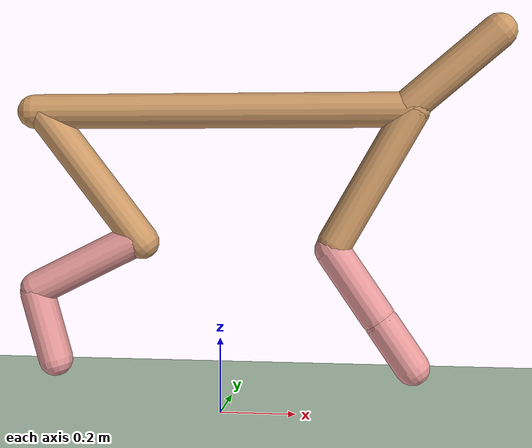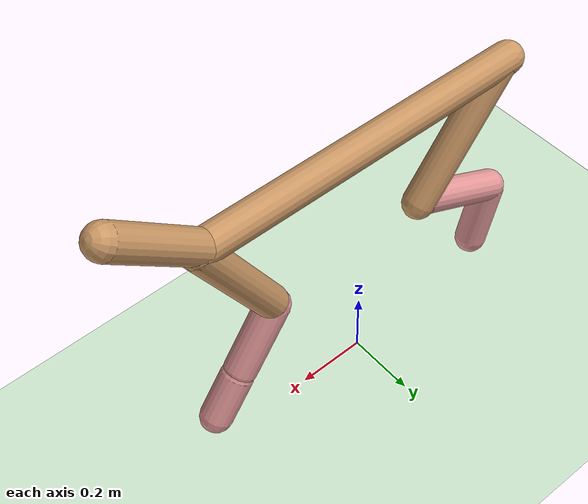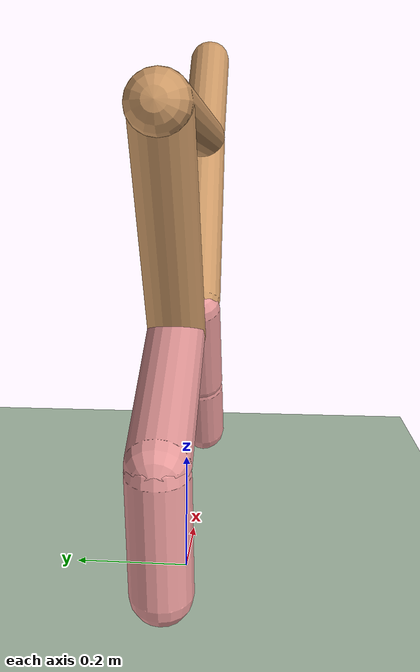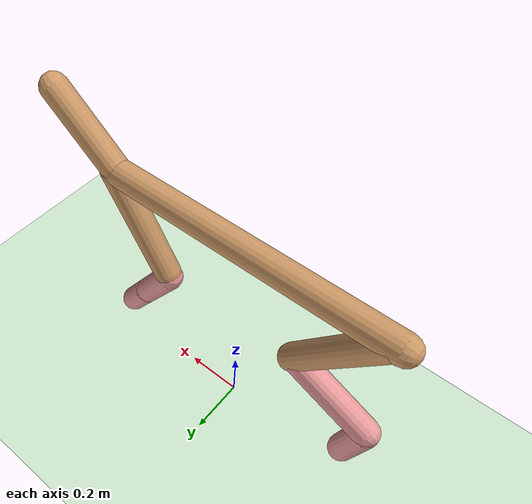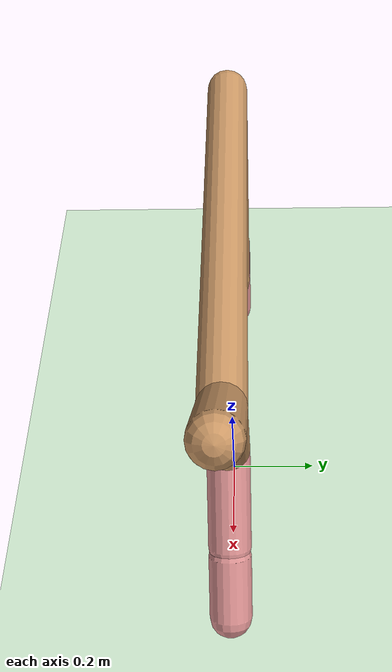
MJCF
<?xml version="1.0" ?>
<mujoco model="cheetah">

  <compiler angle="radian" coordinate="local" inertiafromgeom="true" settotalmass="14"/>

  <default>

    <joint armature=".1" damping=".01" limited="true" solimplimit="0 .8 .03" solreflimit=".02 1" stiffness="8"/>

    <geom conaffinity="0" condim="3" contype="1" friction=".4 .1 .1" rgba="0.8 0.6 .4 1" solimp="0.0 0.8 0.01" solref="0.02 1"/>

    <motor ctrllimited="true" ctrlrange="-1 1"/>

  </default>

  <size nstack="300000" nuser_geom="1"/>

  <option gravity="0 0 -9.81" timestep="0.01"/>

  <asset>

    <texture builtin="gradient" height="100" rgb1="1 1 1" rgb2="0 0 0" type="skybox" width="100"/>

    <texture builtin="flat" height="1278" mark="cross" markrgb="1 1 1" name="texgeom" random="0.01" rgb1="0.8 0.6 0.4" rgb2="0.8 0.6 0.4" type="cube" width="127"/>

    <texture builtin="checker" height="100" name="texplane" rgb1="0 0 0" rgb2="0.8 0.8 0.8" type="2d" width="100"/>

    <material name="MatPlane" reflectance="0.5" shininess="1" specular="1" texrepeat="60 60" texture="texplane"/>

    <material name="geom" texture="texgeom" texuniform="true"/>

  </asset>

  <worldbody>

    <light cutoff="100" diffuse="1 1 1" dir="-0 0 -1.3" directional="true" exponent="1" pos="0 0 1.3" specular=".1 .1 .1"/>

    <geom conaffinity="1" condim="3" material="MatPlane" name="floor" pos="0 0 0" rgba="0.8 0.9 0.8 1" size="40 40 40" type="plane"/>

    <body name="torso" pos="0 0 0.7991275874998255">

      <camera name="track" mode="trackcom" pos="0 -3 0.3" xyaxes="1 0 0 0 0 1"/>

      <joint armature="0" axis="1 0 0" damping="0" limited="false" name="rootx" pos="0 0 0" stiffness="0" type="slide"/>

      <joint armature="0" axis="0 0 1" damping="0" limited="false" name="rootz" pos="0 0 0" stiffness="0" type="slide"/>

      <joint armature="0" axis="0 1 0" damping="0" limited="false" name="rooty" pos="0 0 0" stiffness="0" type="hinge"/>

      <geom fromto="-.5 0 0 .5 0 0" name="torso" size="0.046" type="capsule"/>

      <geom axisangle="0 1 0 .87" name="head" pos=".6 0 .1" size="0.046 .15" type="capsule"/>

      <body name="bthigh" pos="-.5 0 0">

        <joint axis="0 1 0" damping="6" name="bthigh" pos="0 0 0" range="-.52 1.05" stiffness="240" type="hinge"/>

        <geom axisangle="0 1 0 -3.8" name="bthigh" pos="0.1573451591137952 0 -0.17435969709334712" size="0.046 0.21749999999999997" type="capsule"/>

        <body name="bshin" pos="0.2746903182275904 0 -0.3387193941866942">

          <joint axis="0 1 0" damping="4.5" name="bshin" pos="0 0 0" range="-.785 .785" stiffness="180" type="hinge"/>

          <geom axisangle="0 1 0 -2.03" name="bshin" pos="-.14 0 -.07" rgba="0.9 0.6 0.6 1" size="0.046 .15" type="capsule"/>

          <body name="bfoot" pos="-.28 0 -.14">

            <joint axis="0 1 0" damping="3" name="bfoot" pos="0 0 0" range="-.4 .785" stiffness="120" type="hinge"/>

            <geom axisangle="0 1 0 -.27" name="bfoot" pos=".03 0 -.097" rgba="0.9 0.6 0.6 1" size="0.046 .094" type="capsule"/>

          </body>

        </body>

      </body>

      <body name="fthigh" pos=".5 0 0">

        <joint axis="0 1 0" damping="4.5" name="fthigh" pos="0 0 0" range="-1 .7" stiffness="180" type="hinge"/>

        <geom axisangle="0 1 0 .52" name="fthigh" pos="-0.09912758749982549 0 -0.17312992634569116" size="0.046 0.1995" type="capsule"/>

        <body name="fshin" pos="-0.21000000000000002 0 -0.36">

          <joint axis="0 1 0" damping="3" name="fshin" pos="0 0 0" range="-1.2 .87" stiffness="120" type="hinge"/>

          <geom axisangle="0 1 0 -.6" name="fshin" pos=".065 0 -.09" rgba="0.9 0.6 0.6 1" size="0.046 .106" type="capsule"/>

          <body name="ffoot" pos=".13 0 -.18">

            <joint axis="0 1 0" damping="1.5" name="ffoot" pos="0 0 0" range="-.5 .5" stiffness="60" type="hinge"/>

            <geom axisangle="0 1 0 -.6" name="ffoot" pos=".045 0 -.07" rgba="0.9 0.6 0.6 1" size="0.046 .07" type="capsule"/>

          </body>

        </body>

      </body>

    </body>

  </worldbody>

  <actuator>

    <motor gear="120" joint="bthigh" name="bthigh"/>

    <motor gear="90" joint="bshin" name="bshin"/>

    <motor gear="60" joint="bfoot" name="bfoot"/>

    <motor gear="120" joint="fthigh" name="fthigh"/>

    <motor gear="60" joint="fshin" name="fshin"/>

    <motor gear="30" joint="ffoot" name="ffoot"/>

  </actuator>

</mujoco>
